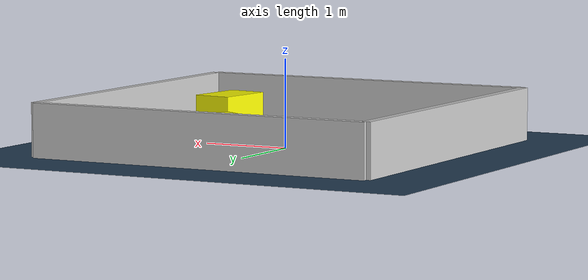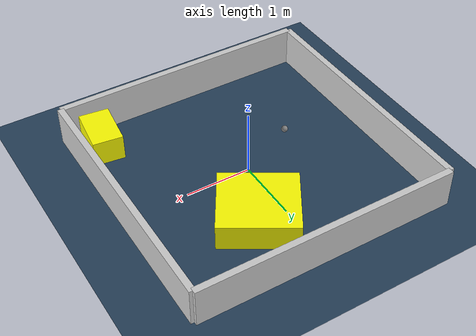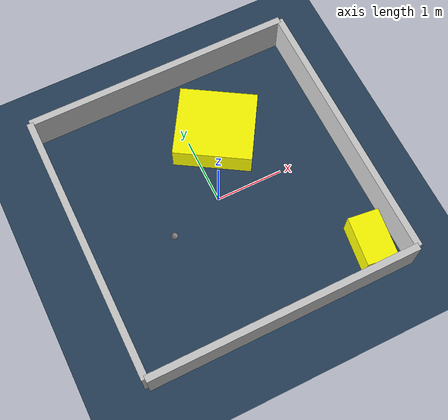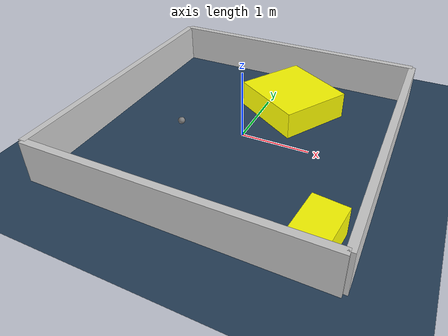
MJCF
<?xml version="1.0" ?>
<mujoco model="generated_environment">
  <option timestep="0.01" integrator="RK4" cone="elliptic"/>
  <default>
    <geom density="1"/>
  </default>
  <asset>
    <texture builtin="gradient" height="3072" rgb1="0.3 0.5 0.7" rgb2="0 0 0" type="skybox" width="512"/>
    <texture builtin="checker" height="300" mark="edge" markrgb="0.8 0.8 0.8" name="groundplane" rgb1="0.2 0.3 0.4" rgb2="0.1 0.2 0.3" type="2d" width="300"/>
    <material name="groundplane" reflectance="0.2" texrepeat="5 5" texture="groundplane" texuniform="true"/>
    <material name="robot" rgba="0.0 1.0 0.0 1"/>
  </asset>
  <worldbody>
    <light dir="0 0 -1" directional="true" pos="0 0 1.5"/>
    <geom condim="4" friction="1.0 0.005 0.001" material="groundplane" name="floor" size="0 0 0.05" type="plane"/>
    <body name="walls">
      <geom name="wall_1" condim="4" pos="-2.0 0.0 0.3" rgba="0.800000011920929 0.800000011920929 0.800000011920929 1.0" size="0.05 2.0 0.3" type="box"/>
      <geom name="wall_2" condim="4" pos="2.0 0.0 0.3" rgba="0.800000011920929 0.800000011920929 0.800000011920929 1.0" size="0.05 2.0 0.3" type="box"/>
      <geom name="wall_3" condim="4" pos="0.0 -2.0 0.3" rgba="0.800000011920929 0.800000011920929 0.800000011920929 1.0" size="2.0 0.05 0.3" type="box"/>
      <geom name="wall_4" condim="4" pos="0.0 2.0 0.3" rgba="0.800000011920929 0.800000011920929 0.800000011920929 1.0" size="2.0 0.05 0.3" type="box"/>
    </body>
    <body name="robot">
      <joint name="joint_x" type="slide" pos="0 0 0" axis="1 0 0"/>
      <joint name="joint_y" type="slide" pos="0 0 0" axis="0 1 0"/>
      <geom name="robot" type="sphere" pos="-0.8256939629677387 -0.30168292850109735 0.2" size="0.05" mass="5." friction="1.0 0.005 0.0001" condim="4"/>
      <site name="sensor_ball"/>
    </body>
    <body name="obstacle_1_movable">
      <geom name="obstacle_1_movable" condim="4" pos="0.41574432662184435 0.9407129264070884 0.2" euler="0 0 328.4084829680066" friction="1.0 0.005 0.001" rgba="1 1 0 1" size="0.5729086358158211 0.5290321419880568 0.2" type="box" mass="0.1"/>
      <joint type="free"/>
    </body>
    <body name="obstacle_2_movable">
      <geom name="obstacle_2_movable" condim="4" pos="1.581328988954274 -1.5659706395432478 0.2" euler="0 0 263.0189911896163" friction="1.0 0.005 0.001" rgba="1 1 0 1" size="0.35765033873993524 0.22808198738690988 0.2" type="box" mass="0.1"/>
      <joint type="free"/>
    </body>
  </worldbody>
  <actuator>
    <motor name="actuator_x" joint="joint_x" gear="1" ctrlrange="-1 1"/>
    <motor name="actuator_y" joint="joint_y" gear="1" ctrlrange="-1 1"/>
  </actuator>
</mujoco>
